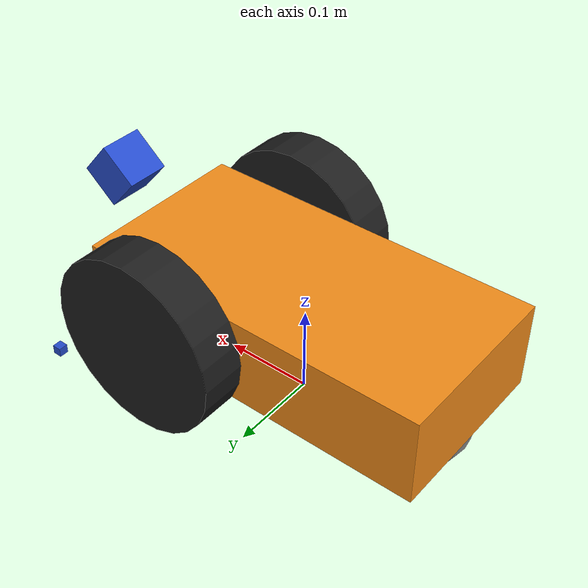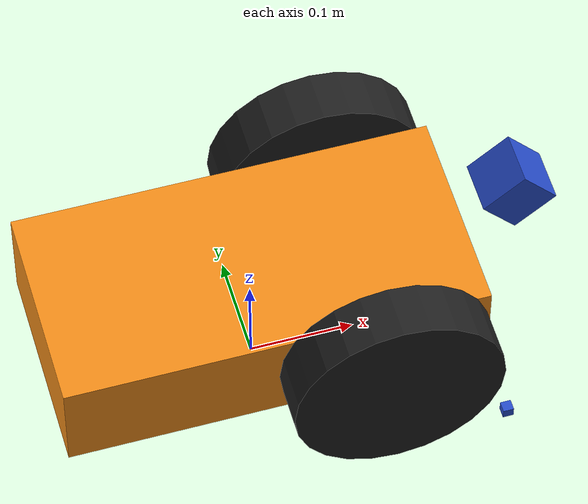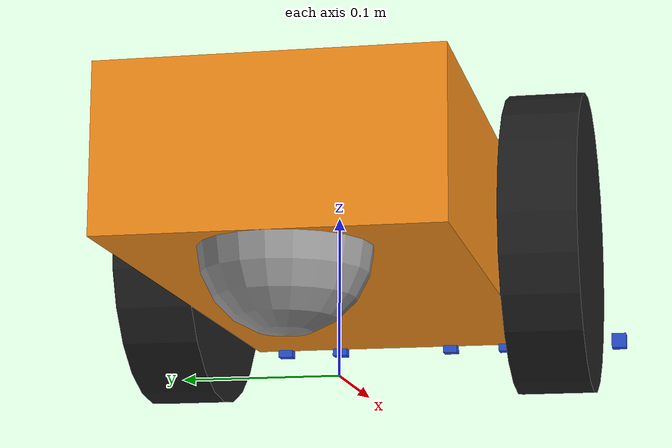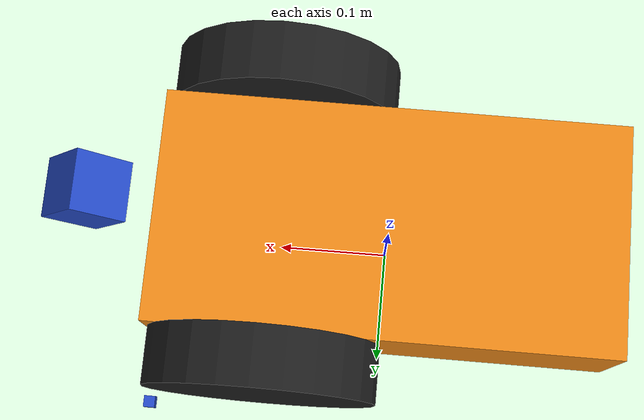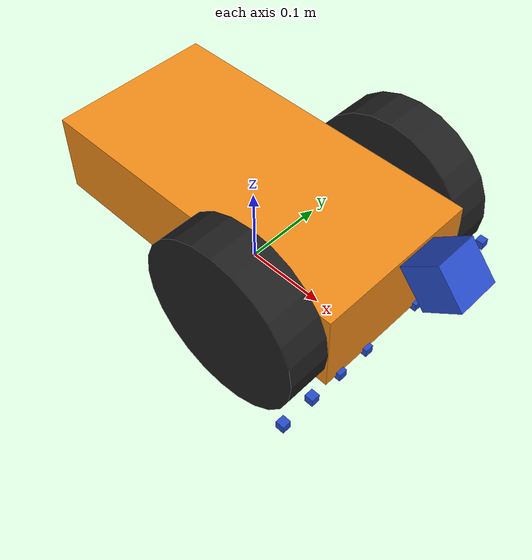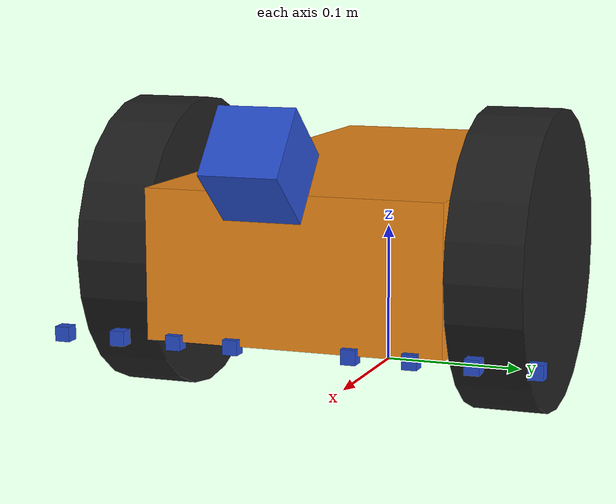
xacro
<?xml version="1.0"?>

<robot name="mybot" xmlns:xacro="http://www.ros.org/wiki/xacro">

  <xacro:property name="PI" value="3.1415926535897931"/>

  <xacro:property name="chassisHeight" value="0.1"/>
  <xacro:property name="chassisLength" value="0.4"/>
  <xacro:property name="chassisWidth" value="0.2"/>
  <xacro:property name="chassisMass" value="50"/>

  <xacro:property name="casterRadius" value="0.05"/>
  <xacro:property name="casterMass" value="5"/>

  <xacro:property name="wheelWidth" value="0.05"/>
  <xacro:property name="wheelRadius" value="0.1"/>
  <xacro:property name="wheelPos" value="0.2"/>
  <xacro:property name="wheelMass" value="5"/>

  <xacro:property name="cameraSize" value="0.05"/>
  <xacro:property name="cameraMass" value="0.1"/>
  <xacro:property name="cameraAngle" value="1.22"/>

  <xacro:property name="sensorSize" value="0.01"/>
  <xacro:property name="sensorAngle" value="${PI/2}"/>
  <xacro:property name="sensorSpacing" value="0.04"/>

  <xacro:include filename="$(find mybot_description)/urdf/mybot.gazebo" />
  <xacro:include filename="$(find mybot_description)/urdf/materials.xacro" />
  <xacro:include filename="$(find mybot_description)/urdf/macros.xacro" />

  <link name="footprint" />

  <joint name="base_joint" type="fixed">
    <parent link="footprint"/>
    <child link="chassis"/>
  </joint>

  <link name="chassis">
    <collision>
      <origin xyz="0 0 ${wheelRadius}" rpy="0 0 0"/>
      <geometry>
	<box size="${chassisLength} ${chassisWidth} ${chassisHeight}"/>
      </geometry>
    </collision>

    <visual>
      <origin xyz="0 0 ${wheelRadius}" rpy="0 0 0"/>
      <geometry>
	<box size="${chassisLength} ${chassisWidth} ${chassisHeight}"/>
      </geometry>
      <material name="orange"/>
    </visual>

    <inertial>
      <origin xyz="0 0 ${wheelRadius}" rpy="0 0 0"/>
      <mass value="${chassisMass}"/>
      <box_inertia m="${chassisMass}" x="${chassisLength}" y="${chassisWidth}" z="${chassisHeight}"/>
    </inertial>
  </link>

  <joint name="fixed" type="fixed">
    <parent link="chassis"/>
    <child link="caster_wheel"/>
  </joint>

  <link name="caster_wheel">

    <collision>
      <origin xyz="${casterRadius-chassisLength/2} 0 ${casterRadius-chassisHeight+wheelRadius}" rpy="0 0 0"/>
      <geometry>
	<sphere radius="${casterRadius}"/>
      </geometry>
    </collision>

    <visual>
      <origin xyz="${casterRadius-chassisLength/2} 0 ${casterRadius-chassisHeight+wheelRadius}" rpy="0 0 0"/>
      <geometry>
	<sphere radius="${casterRadius}"/>
      </geometry>
    </visual>

    <inertial>
      <origin xyz="${casterRadius-chassisLength/2} 0 ${casterRadius-chassisHeight+wheelRadius}" rpy="0 0 0"/>
      <mass value="${casterMass}"/>
      <sphere_inertia m="${casterMass}" r="${casterRadius}"/>
    </inertial>
  </link>

  <wheel lr="left" tY="-1"/>
  <wheel lr="right" tY="1"/>

  <joint name="camera_joint" type="fixed">
    <origin xyz="${cameraSize+chassisLength/2} 0 ${cameraSize+wheelRadius+cameraSize/2}" rpy="0 ${cameraAngle} 0"/>
    <parent link="chassis"/>
    <child link="camera"/>
  </joint>

  <link name="camera">
    <collision>
      <origin xyz="${cameraSize} 0 0" rpy="0 0 0"/>
      <geometry>
	<box size="${cameraSize} ${cameraSize} ${cameraSize}"/>
      </geometry>
    </collision>

    <visual>
      <origin xyz="0 0 0" rpy="0 ${cameraAngle} 0"/>
      <geometry>
	<box size="${cameraSize} ${cameraSize} ${cameraSize}"/>
      </geometry>
      <material name="blue"/>
    </visual>

    <inertial>
      <mass value="${cameraMass}" />
      <origin xyz="0 0 0" rpy="0 0 0"/>
      <box_inertia m="${cameraMass}" x="${cameraSize}" y="${cameraSize}" z="${cameraSize}" />
    </inertial>
  </link>

  <joint name="left_sensor1" type="fixed">
    <origin xyz="${chassisLength/2} ${sensorSpacing} ${wheelRadius/2}" rpy="0 ${sensorAngle} 0"/>
    <parent link="chassis"/>
    <child link="l_sensor_1"/>
  </joint>

  <link name="l_sensor_1">
    <collision>
      <origin xyz="0 0 0" rpy="0 ${sensorAngle} 0"/>
      <geometry>
	<box size="${sensorSize} ${sensorSize} ${sensorSize}"/>
      </geometry>
    </collision>

    <visual>
      <origin xyz="0 0 0" rpy="0 ${sensorAngle} 0"/>
      <geometry>
	<box size="${sensorSize} ${sensorSize} ${sensorSize}"/>
      </geometry>
      <material name="blue"/>
    </visual>

    <inertial>
      <mass value="${cameraMass}" />
      <origin xyz="0 0 0" rpy="0 0 0"/>
      <box_inertia m="${cameraMass}" x="${sensorSize}" y="${sensorSize}" z="${sensorSize}" />
    </inertial>
  </link>

  <joint name="right_sensor1" type="fixed">
    <origin xyz="${chassisLength/2} ${-sensorSpacing} ${wheelRadius/2}" rpy="0 ${sensorAngle} 0"/>
    <parent link="chassis"/>
    <child link="r_sensor_1"/>
  </joint>

  <link name="r_sensor_1">
    <collision>
      <origin xyz="0 0 0" rpy="0 ${sensorAngle} 0"/>
      <geometry>
	<box size="${sensorSize} ${sensorSize} ${sensorSize}"/>
      </geometry>
    </collision>

    <visual>
      <origin xyz="0 0 0" rpy="0 ${sensorAngle} 0"/>
      <geometry>
	<box size="${sensorSize} ${sensorSize} ${sensorSize}"/>
      </geometry>
      <material name="blue"/>
    </visual>

    <inertial>
      <mass value="${cameraMass}" />
      <origin xyz="0 0 0" rpy="0 0 0"/>
      <box_inertia m="${cameraMass}" x="${sensorSize}" y="${sensorSize}" z="${sensorSize}" />
    </inertial>
  </link>

  <joint name="left_sensor2" type="fixed">
    <origin xyz="${chassisLength/2} ${2*sensorSpacing} ${wheelRadius/2}" rpy="0 ${sensorAngle} 0"/>
    <parent link="chassis"/>
    <child link="l_sensor_2"/>
  </joint>

  <link name="l_sensor_2">
    <collision>
      <origin xyz="0 0 0" rpy="0 ${sensorAngle} 0"/>
      <geometry>
	<box size="${sensorSize} ${sensorSize} ${sensorSize}"/>
      </geometry>
    </collision>

    <visual>
      <origin xyz="0 0 0" rpy="0 ${sensorAngle} 0"/>
      <geometry>
	<box size="${sensorSize} ${sensorSize} ${sensorSize}"/>
      </geometry>
      <material name="blue"/>
    </visual>

    <inertial>
      <mass value="${cameraMass}" />
      <origin xyz="0 0 0" rpy="0 0 0"/>
      <box_inertia m="${cameraMass}" x="${sensorSize}" y="${sensorSize}" z="${sensorSize}" />
    </inertial>
  </link>

  <joint name="right_sensor2" type="fixed">
    <origin xyz="${chassisLength/2} ${-2*sensorSpacing} ${wheelRadius/2}" rpy="0 ${sensorAngle} 0"/>
    <parent link="chassis"/>
    <child link="r_sensor_2"/>
  </joint>

  <link name="r_sensor_2">
    <collision>
      <origin xyz="0 0 0" rpy="0 ${sensorAngle} 0"/>
      <geometry>
	<box size="${sensorSize} ${sensorSize} ${sensorSize}"/>
      </geometry>
    </collision>

    <visual>
      <origin xyz="0 0 0" rpy="0 ${sensorAngle} 0"/>
      <geometry>
	<box size="${sensorSize} ${sensorSize} ${sensorSize}"/>
      </geometry>
      <material name="blue"/>
    </visual>

    <inertial>
      <mass value="${cameraMass}" />
      <origin xyz="0 0 0" rpy="0 0 0"/>
      <box_inertia m="${cameraMass}" x="${sensorSize}" y="${sensorSize}" z="${sensorSize}" />
    </inertial>
  </link>

  <joint name="left_sensor3" type="fixed">
    <origin xyz="${chassisLength/2} ${3*sensorSpacing} ${wheelRadius/2}" rpy="0 ${sensorAngle} 0"/>
    <parent link="chassis"/>
    <child link="l_sensor_3"/>
  </joint>

  <link name="l_sensor_3">
    <collision>
      <origin xyz="0 0 0" rpy="0 ${sensorAngle} 0"/>
      <geometry>
	<box size="${sensorSize} ${sensorSize} ${sensorSize}"/>
      </geometry>
    </collision>

    <visual>
      <origin xyz="0 0 0" rpy="0 ${sensorAngle} 0"/>
      <geometry>
	<box size="${sensorSize} ${sensorSize} ${sensorSize}"/>
      </geometry>
      <material name="blue"/>
    </visual>

    <inertial>
      <mass value="${cameraMass}" />
      <origin xyz="0 0 0" rpy="0 0 0"/>
      <box_inertia m="${cameraMass}" x="${sensorSize}" y="${sensorSize}" z="${sensorSize}" />
    </inertial>
  </link>

  <joint name="right_sensor3" type="fixed">
    <origin xyz="${chassisLength/2} ${-3*sensorSpacing} ${wheelRadius/2}" rpy="0 ${sensorAngle} 0"/>
    <parent link="chassis"/>
    <child link="r_sensor_3"/>
  </joint>

  <link name="r_sensor_3">
    <collision>
      <origin xyz="0 0 0" rpy="0 ${sensorAngle} 0"/>
      <geometry>
	<box size="${sensorSize} ${sensorSize} ${sensorSize}"/>
      </geometry>
    </collision>

    <visual>
      <origin xyz="0 0 0" rpy="0 ${sensorAngle} 0"/>
      <geometry>
	<box size="${sensorSize} ${sensorSize} ${sensorSize}"/>
      </geometry>
      <material name="blue"/>
    </visual>

    <inertial>
      <mass value="${cameraMass}" />
      <origin xyz="0 0 0" rpy="0 0 0"/>
      <box_inertia m="${cameraMass}" x="${sensorSize}" y="${sensorSize}" z="${sensorSize}" />
    </inertial>
  </link>

  <joint name="left_sensor4" type="fixed">
    <origin xyz="${chassisLength/2} ${4*sensorSpacing} ${wheelRadius/2}" rpy="0 ${sensorAngle} 0"/>
    <parent link="chassis"/>
    <child link="l_sensor_4"/>
  </joint>

  <link name="l_sensor_4">
    <collision>
      <origin xyz="0 0 0" rpy="0 ${sensorAngle} 0"/>
      <geometry>
	<box size="${sensorSize} ${sensorSize} ${sensorSize}"/>
      </geometry>
    </collision>

    <visual>
      <origin xyz="0 0 0" rpy="0 ${sensorAngle} 0"/>
      <geometry>
	<box size="${sensorSize} ${sensorSize} ${sensorSize}"/>
      </geometry>
      <material name="blue"/>
    </visual>

    <inertial>
      <mass value="${cameraMass}" />
      <origin xyz="0 0 0" rpy="0 0 0"/>
      <box_inertia m="${cameraMass}" x="${sensorSize}" y="${sensorSize}" z="${sensorSize}" />
    </inertial>
  </link>

  <joint name="right_sensor4" type="fixed">
    <origin xyz="${chassisLength/2} ${-4*sensorSpacing} ${wheelRadius/2}" rpy="0 ${sensorAngle} 0"/>
    <parent link="chassis"/>
    <child link="r_sensor_4"/>
  </joint>

  <link name="r_sensor_4">
    <collision>
      <origin xyz="0 0 0" rpy="0 ${sensorAngle} 0"/>
      <geometry>
	<box size="${sensorSize} ${sensorSize} ${sensorSize}"/>
      </geometry>
    </collision>

    <visual>
      <origin xyz="0 0 0" rpy="0 ${sensorAngle} 0"/>
      <geometry>
	<box size="${sensorSize} ${sensorSize} ${sensorSize}"/>
      </geometry>
      <material name="blue"/>
    </visual>

    <inertial>
      <mass value="${cameraMass}" />
      <origin xyz="0 0 0" rpy="0 0 0"/>
      <box_inertia m="${cameraMass}" x="${sensorSize}" y="${sensorSize}" z="${sensorSize}" />
    </inertial>
  </link>

</robot>

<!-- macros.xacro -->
<robot>
     <macro name="cylinder_inertia" params="m r h">
        <inertia  ixx="${m*(3*r*r+h*h)/12}" ixy = "0" ixz = "0"
                  iyy="${m*(3*r*r+h*h)/12}" iyz = "0"
                  izz="${m*r*r/2}" />
      </macro>

      <macro name="box_inertia" params="m x y z">
        <inertia  ixx="${m*(y*y+z*z)/12}" ixy = "0" ixz = "0"
                  iyy="${m*(x*x+z*z)/12}" iyz = "0"
                  izz="${m*(x*x+z*z)/12}" />
      </macro>

      <macro name="sphere_inertia" params="m r">
        <inertia  ixx="${2*m*r*r/5}" ixy = "0" ixz = "0"
                  iyy="${2*m*r*r/5}" iyz = "0"
                  izz="${2*m*r*r/5}" />
      </macro>

     <macro name="wheel" params="lr tY">

       <link name="${lr}_wheel">
        <collision>
          <origin xyz="0 0 0" rpy="0 ${PI/2} ${PI/2}" />
          <geometry>
           <cylinder length="${wheelWidth}" radius="${wheelRadius}"/>
          </geometry>
        </collision>

        <visual>
          <origin xyz="0 0 0" rpy="0 ${PI/2} ${PI/2}" />
          <geometry>
           <cylinder length="${wheelWidth}" radius="${wheelRadius}"/>
          </geometry>
          <material name="black"/>
        </visual>

        <inertial>
          <origin xyz="0 0 0" rpy="0 ${PI/2} ${PI/2}" />
          <mass value="${wheelMass}"/>
          <cylinder_inertia m="${wheelMass}" r="${wheelRadius}" h="${wheelWidth}"/>
        </inertial>
       </link>

        <gazebo reference="${lr}_wheel">
          <mu1 value="1.0"/>
          <mu2 value="1.0"/>
          <kp  value="10000000.0" />
          <kd  value="1.0" />
          <fdir1 value="1 0 0"/>
          <material>Gazebo/Black</material>
        </gazebo>

       <joint name="${lr}_wheel_hinge" type="continuous">
          <parent link="chassis"/>
          <child link="${lr}_wheel"/>
          <origin xyz="${+wheelPos-chassisLength/4} ${tY*wheelWidth/2+tY*chassisWidth/2} ${wheelRadius}" rpy="0 0 0" />
          <axis xyz="0 1 0" rpy="0 0 0" />
          <limit effort="100" velocity="100"/>
          <joint_properties damping="0.0" friction="0.0"/>
	  <hardwareInterface>EffortJointInterface</hardwareInterface>
        </joint>

      <transmission name="${lr}_trans">
        <type>transmission_interface/SimpleTransmission</type>
        <joint name="${lr}_wheel_hinge">
	  <hardwareInterface>EffortJointInterface</hardwareInterface>
	</joint>
        <actuator name="${lr}Motor">
          <hardwareInterface>EffortJointInterface</hardwareInterface>
          <mechanicalReduction>10</mechanicalReduction>
        </actuator>
      </transmission>

     </macro>
</robot>
